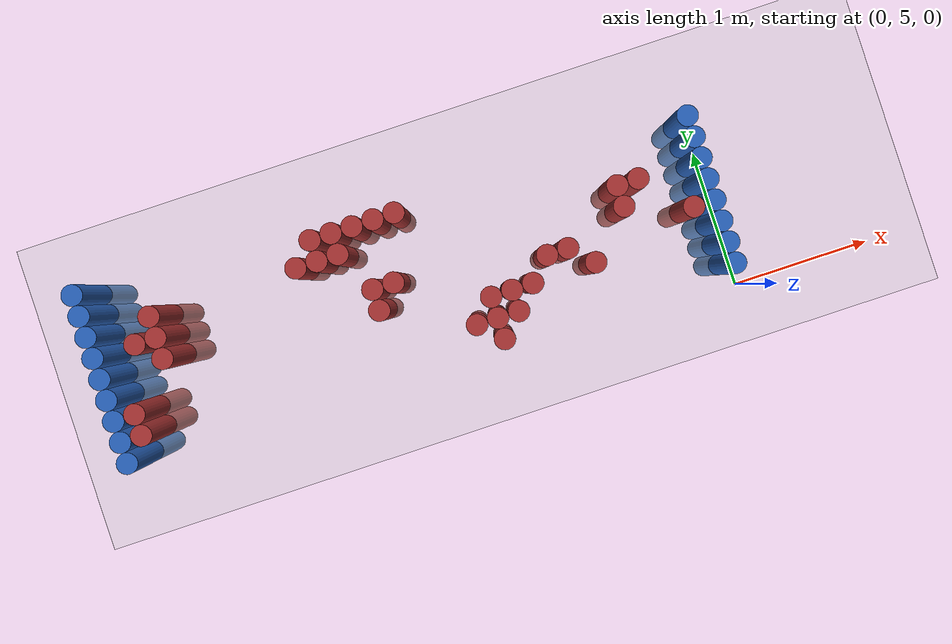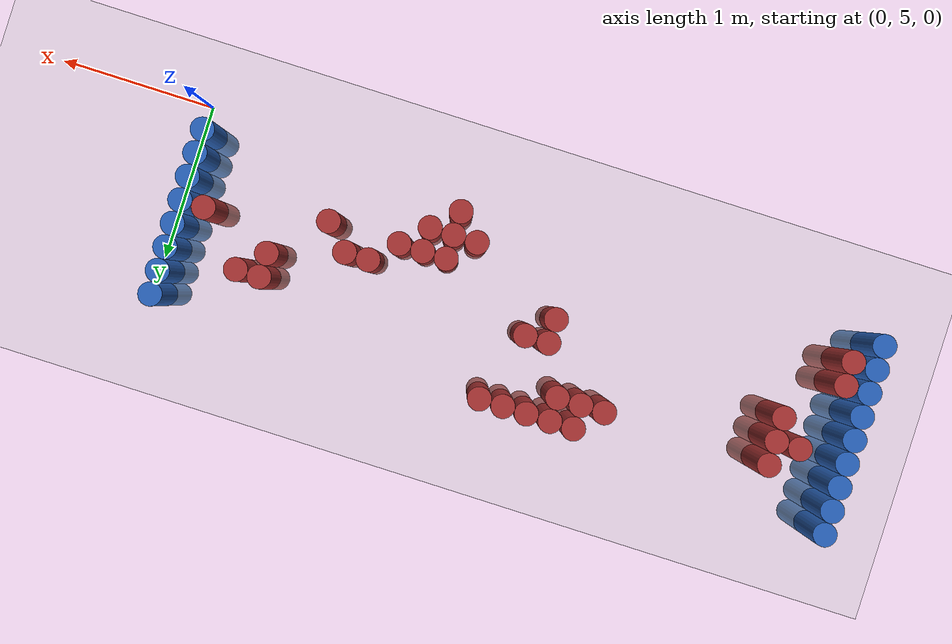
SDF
<sdf version="1.6">
 <world name="default">
  <model name="ground_plane">
   <static>1</static>
   <link name="link">
    <collision name="collision">
     <geometry><plane><normal>0 0 1</normal><size>100 100</size></plane></geometry>
     <surface><friction><ode><mu>100</mu><mu2>50</mu2></ode></friction></surface>
    </collision>
    <visual name="visual">
     <cast_shadows>0</cast_shadows>
     <geometry><plane><normal>0 0 1</normal><size>100 100</size></plane></geometry>
     <material>
      <script><uri>file://media/materials/scripts/gazebo.material</uri><name>Gazebo/Grey</name></script>
     </material>
    </visual>
   </link>
  </model>
  <model name="unit_cylinder_96">
   <static>1</static>
   <pose>-4.425000 5.175000 0.000000 0.000000 0.000000 0.000000</pose>
   <link name="link">
    <inertial>
     <mass>1</mass>
     <inertia><ixx>0.145833</ixx><ixy>0</ixy><ixz>0</ixz><iyy>0.145833</iyy><iyz>0</iyz><izz>0.125</izz></inertia>
    </inertial>
    <collision name="collision">
     <geometry><cylinder><radius>0.075000</radius><length>1</length></cylinder></geometry>
    </collision>
    <visual name="visual">
     <geometry><cylinder><radius>0.075000</radius><length>1</length></cylinder></geometry>
     <material>
      <ambient>0.152000 0.379000 0.720000 1</ambient>
      <diffuse>0.152000 0.379000 0.720000 1</diffuse>
     </material>
     <material>
      <script><name>Gazebo/Grey</name><uri>file://media/materials/scripts/gazebo.material</uri></script>
     </material>
    </visual>
   </link>
  </model>
  <model name="unit_cylinder_97">
   <static>1</static>
   <pose>-4.425000 5.325000 0.000000 0.000000 0.000000 0.000000</pose>
   <link name="link">
    <inertial>
     <mass>1</mass>
     <inertia><ixx>0.145833</ixx><ixy>0</ixy><ixz>0</ixz><iyy>0.145833</iyy><iyz>0</iyz><izz>0.125</izz></inertia>
    </inertial>
    <collision name="collision">
     <geometry><cylinder><radius>0.075000</radius><length>1</length></cylinder></geometry>
    </collision>
    <visual name="visual">
     <geometry><cylinder><radius>0.075000</radius><length>1</length></cylinder></geometry>
     <material>
      <ambient>0.152000 0.379000 0.720000 1</ambient>
      <diffuse>0.152000 0.379000 0.720000 1</diffuse>
     </material>
     <material>
      <script><name>Gazebo/Grey</name><uri>file://media/materials/scripts/gazebo.material</uri></script>
     </material>
    </visual>
   </link>
  </model>
  <model name="unit_cylinder_98">
   <static>1</static>
   <pose>-4.425000 5.475000 0.000000 0.000000 0.000000 0.000000</pose>
   <link name="link">
    <inertial>
     <mass>1</mass>
     <inertia><ixx>0.145833</ixx><ixy>0</ixy><ixz>0</ixz><iyy>0.145833</iyy><iyz>0</iyz><izz>0.125</izz></inertia>
    </inertial>
    <collision name="collision">
     <geometry><cylinder><radius>0.075000</radius><length>1</length></cylinder></geometry>
    </collision>
    <visual name="visual">
     <geometry><cylinder><radius>0.075000</radius><length>1</length></cylinder></geometry>
     <material>
      <ambient>0.152000 0.379000 0.720000 1</ambient>
      <diffuse>0.152000 0.379000 0.720000 1</diffuse>
     </material>
     <material>
      <script><name>Gazebo/Grey</name><uri>file://media/materials/scripts/gazebo.material</uri></script>
     </material>
    </visual>
   </link>
  </model>
  <model name="unit_cylinder_99">
   <static>1</static>
   <pose>-4.425000 5.625000 0.000000 0.000000 0.000000 0.000000</pose>
   <link name="link">
    <inertial>
     <mass>1</mass>
     <inertia><ixx>0.145833</ixx><ixy>0</ixy><ixz>0</ixz><iyy>0.145833</iyy><iyz>0</iyz><izz>0.125</izz></inertia>
    </inertial>
    <collision name="collision">
     <geometry><cylinder><radius>0.075000</radius><length>1</length></cylinder></geometry>
    </collision>
    <visual name="visual">
     <geometry><cylinder><radius>0.075000</radius><length>1</length></cylinder></geometry>
     <material>
      <ambient>0.152000 0.379000 0.720000 1</ambient>
      <diffuse>0.152000 0.379000 0.720000 1</diffuse>
     </material>
     <material>
      <script><name>Gazebo/Grey</name><uri>file://media/materials/scripts/gazebo.material</uri></script>
     </material>
    </visual>
   </link>
  </model>
  <model name="unit_cylinder_100">
   <static>1</static>
   <pose>-4.425000 5.775000 0.000000 0.000000 0.000000 0.000000</pose>
   <link name="link">
    <inertial>
     <mass>1</mass>
     <inertia><ixx>0.145833</ixx><ixy>0</ixy><ixz>0</ixz><iyy>0.145833</iyy><iyz>0</iyz><izz>0.125</izz></inertia>
    </inertial>
    <collision name="collision">
     <geometry><cylinder><radius>0.075000</radius><length>1</length></cylinder></geometry>
    </collision>
    <visual name="visual">
     <geometry><cylinder><radius>0.075000</radius><length>1</length></cylinder></geometry>
     <material>
      <ambient>0.152000 0.379000 0.720000 1</ambient>
      <diffuse>0.152000 0.379000 0.720000 1</diffuse>
     </material>
     <material>
      <script><name>Gazebo/Grey</name><uri>file://media/materials/scripts/gazebo.material</uri></script>
     </material>
    </visual>
   </link>
  </model>
  <model name="unit_cylinder_101">
   <static>1</static>
   <pose>-4.425000 5.925000 0.000000 0.000000 0.000000 0.000000</pose>
   <link name="link">
    <inertial>
     <mass>1</mass>
     <inertia><ixx>0.145833</ixx><ixy>0</ixy><ixz>0</ixz><iyy>0.145833</iyy><iyz>0</iyz><izz>0.125</izz></inertia>
    </inertial>
    <collision name="collision">
     <geometry><cylinder><radius>0.075000</radius><length>1</length></cylinder></geometry>
    </collision>
    <visual name="visual">
     <geometry><cylinder><radius>0.075000</radius><length>1</length></cylinder></geometry>
     <material>
      <ambient>0.152000 0.379000 0.720000 1</ambient>
      <diffuse>0.152000 0.379000 0.720000 1</diffuse>
     </material>
     <material>
      <script><name>Gazebo/Grey</name><uri>file://media/materials/scripts/gazebo.material</uri></script>
     </material>
    </visual>
   </link>
  </model>
  <model name="unit_cylinder_102">
   <static>1</static>
   <pose>-4.425000 6.075000 0.000000 0.000000 0.000000 0.000000</pose>
   <link name="link">
    <inertial>
     <mass>1</mass>
     <inertia><ixx>0.145833</ixx><ixy>0</ixy><ixz>0</ixz><iyy>0.145833</iyy><iyz>0</iyz><izz>0.125</izz></inertia>
    </inertial>
    <collision name="collision">
     <geometry><cylinder><radius>0.075000</radius><length>1</length></cylinder></geometry>
    </collision>
    <visual name="visual">
     <geometry><cylinder><radius>0.075000</radius><length>1</length></cylinder></geometry>
     <material>
      <ambient>0.152000 0.379000 0.720000 1</ambient>
      <diffuse>0.152000 0.379000 0.720000 1</diffuse>
     </material>
     <material>
      <script><name>Gazebo/Grey</name><uri>file://media/materials/scripts/gazebo.material</uri></script>
     </material>
    </visual>
   </link>
  </model>
  <model name="unit_cylinder_103">
   <static>1</static>
   <pose>-4.425000 6.225000 0.000000 0.000000 0.000000 0.000000</pose>
   <link name="link">
    <inertial>
     <mass>1</mass>
     <inertia><ixx>0.145833</ixx><ixy>0</ixy><ixz>0</ixz><iyy>0.145833</iyy><iyz>0</iyz><izz>0.125</izz></inertia>
    </inertial>
    <collision name="collision">
     <geometry><cylinder><radius>0.075000</radius><length>1</length></cylinder></geometry>
    </collision>
    <visual name="visual">
     <geometry><cylinder><radius>0.075000</radius><length>1</length></cylinder></geometry>
     <material>
      <ambient>0.152000 0.379000 0.720000 1</ambient>
      <diffuse>0.152000 0.379000 0.720000 1</diffuse>
     </material>
     <material>
      <script><name>Gazebo/Grey</name><uri>file://media/materials/scripts/gazebo.material</uri></script>
     </material>
    </visual>
   </link>
  </model>
  <model name="unit_cylinder_104">
   <static>1</static>
   <pose>-4.425000 6.375000 0.000000 0.000000 0.000000 0.000000</pose>
   <link name="link">
    <inertial>
     <mass>1</mass>
     <inertia><ixx>0.145833</ixx><ixy>0</ixy><ixz>0</ixz><iyy>0.145833</iyy><iyz>0</iyz><izz>0.125</izz></inertia>
    </inertial>
    <collision name="collision">
     <geometry><cylinder><radius>0.075000</radius><length>1</length></cylinder></geometry>
    </collision>
    <visual name="visual">
     <geometry><cylinder><radius>0.075000</radius><length>1</length></cylinder></geometry>
     <material>
      <ambient>0.152000 0.379000 0.720000 1</ambient>
      <diffuse>0.152000 0.379000 0.720000 1</diffuse>
     </material>
     <material>
      <script><name>Gazebo/Grey</name><uri>file://media/materials/scripts/gazebo.material</uri></script>
     </material>
    </visual>
   </link>
  </model>
  <model name="unit_cylinder_126">
   <static>1</static>
   <pose>-4.275000 5.325000 0.000000 0.000000 0.000000 0.000000</pose>
   <link name="link">
    <inertial>
     <mass>1</mass>
     <inertia><ixx>0.145833</ixx><ixy>0</ixy><ixz>0</ixz><iyy>0.145833</iyy><iyz>0</iyz><izz>0.125</izz></inertia>
    </inertial>
    <collision name="collision">
     <geometry><cylinder><radius>0.075000</radius><length>1</length></cylinder></geometry>
    </collision>
    <visual name="visual">
     <geometry><cylinder><radius>0.075000</radius><length>1</length></cylinder></geometry>
     <material>
      <ambient>0.648000 0.192000 0.192000 1</ambient>
      <diffuse>0.648000 0.192000 0.192000 1</diffuse>
     </material>
     <material>
      <script><name>Gazebo/Grey</name><uri>file://media/materials/scripts/gazebo.material</uri></script>
     </material>
    </visual>
   </link>
  </model>
  <model name="unit_cylinder_127">
   <static>1</static>
   <pose>-4.275000 5.475000 0.000000 0.000000 0.000000 0.000000</pose>
   <link name="link">
    <inertial>
     <mass>1</mass>
     <inertia><ixx>0.145833</ixx><ixy>0</ixy><ixz>0</ixz><iyy>0.145833</iyy><iyz>0</iyz><izz>0.125</izz></inertia>
    </inertial>
    <collision name="collision">
     <geometry><cylinder><radius>0.075000</radius><length>1</length></cylinder></geometry>
    </collision>
    <visual name="visual">
     <geometry><cylinder><radius>0.075000</radius><length>1</length></cylinder></geometry>
     <material>
      <ambient>0.648000 0.192000 0.192000 1</ambient>
      <diffuse>0.648000 0.192000 0.192000 1</diffuse>
     </material>
     <material>
      <script><name>Gazebo/Grey</name><uri>file://media/materials/scripts/gazebo.material</uri></script>
     </material>
    </visual>
   </link>
  </model>
  <model name="unit_cylinder_143">
   <static>1</static>
   <pose>-4.125000 5.925000 0.000000 0.000000 0.000000 0.000000</pose>
   <link name="link">
    <inertial>
     <mass>1</mass>
     <inertia><ixx>0.145833</ixx><ixy>0</ixy><ixz>0</ixz><iyy>0.145833</iyy><iyz>0</iyz><izz>0.125</izz></inertia>
    </inertial>
    <collision name="collision">
     <geometry><cylinder><radius>0.075000</radius><length>1</length></cylinder></geometry>
    </collision>
    <visual name="visual">
     <geometry><cylinder><radius>0.075000</radius><length>1</length></cylinder></geometry>
     <material>
      <ambient>0.648000 0.192000 0.192000 1</ambient>
      <diffuse>0.648000 0.192000 0.192000 1</diffuse>
     </material>
     <material>
      <script><name>Gazebo/Grey</name><uri>file://media/materials/scripts/gazebo.material</uri></script>
     </material>
    </visual>
   </link>
  </model>
  <model name="unit_cylinder_148">
   <static>1</static>
   <pose>-3.975000 5.775000 0.000000 0.000000 0.000000 0.000000</pose>
   <link name="link">
    <inertial>
     <mass>1</mass>
     <inertia><ixx>0.145833</ixx><ixy>0</ixy><ixz>0</ixz><iyy>0.145833</iyy><iyz>0</iyz><izz>0.125</izz></inertia>
    </inertial>
    <collision name="collision">
     <geometry><cylinder><radius>0.075000</radius><length>1</length></cylinder></geometry>
    </collision>
    <visual name="visual">
     <geometry><cylinder><radius>0.075000</radius><length>1</length></cylinder></geometry>
     <material>
      <ambient>0.648000 0.192000 0.192000 1</ambient>
      <diffuse>0.648000 0.192000 0.192000 1</diffuse>
     </material>
     <material>
      <script><name>Gazebo/Grey</name><uri>file://media/materials/scripts/gazebo.material</uri></script>
     </material>
    </visual>
   </link>
  </model>
  <model name="unit_cylinder_149">
   <static>1</static>
   <pose>-3.975000 5.925000 0.000000 0.000000 0.000000 0.000000</pose>
   <link name="link">
    <inertial>
     <mass>1</mass>
     <inertia><ixx>0.145833</ixx><ixy>0</ixy><ixz>0</ixz><iyy>0.145833</iyy><iyz>0</iyz><izz>0.125</izz></inertia>
    </inertial>
    <collision name="collision">
     <geometry><cylinder><radius>0.075000</radius><length>1</length></cylinder></geometry>
    </collision>
    <visual name="visual">
     <geometry><cylinder><radius>0.075000</radius><length>1</length></cylinder></geometry>
     <material>
      <ambient>0.648000 0.192000 0.192000 1</ambient>
      <diffuse>0.648000 0.192000 0.192000 1</diffuse>
     </material>
     <material>
      <script><name>Gazebo/Grey</name><uri>file://media/materials/scripts/gazebo.material</uri></script>
     </material>
    </visual>
   </link>
  </model>
  <model name="unit_cylinder_150">
   <static>1</static>
   <pose>-3.975000 6.075000 0.000000 0.000000 0.000000 0.000000</pose>
   <link name="link">
    <inertial>
     <mass>1</mass>
     <inertia><ixx>0.145833</ixx><ixy>0</ixy><ixz>0</ixz><iyy>0.145833</iyy><iyz>0</iyz><izz>0.125</izz></inertia>
    </inertial>
    <collision name="collision">
     <geometry><cylinder><radius>0.075000</radius><length>1</length></cylinder></geometry>
    </collision>
    <visual name="visual">
     <geometry><cylinder><radius>0.075000</radius><length>1</length></cylinder></geometry>
     <material>
      <ambient>0.648000 0.192000 0.192000 1</ambient>
      <diffuse>0.648000 0.192000 0.192000 1</diffuse>
     </material>
     <material>
      <script><name>Gazebo/Grey</name><uri>file://media/materials/scripts/gazebo.material</uri></script>
     </material>
    </visual>
   </link>
  </model>
  <model name="unit_cylinder_158">
   <static>1</static>
   <pose>-2.925000 6.075000 0.000000 0.000000 0.000000 0.000000</pose>
   <link name="link">
    <inertial>
     <mass>1</mass>
     <inertia><ixx>0.145833</ixx><ixy>0</ixy><ixz>0</ixz><iyy>0.145833</iyy><iyz>0</iyz><izz>0.125</izz></inertia>
    </inertial>
    <collision name="collision">
     <geometry><cylinder><radius>0.075000</radius><length>1</length></cylinder></geometry>
    </collision>
    <visual name="visual">
     <geometry><cylinder><radius>0.075000</radius><length>1</length></cylinder></geometry>
     <material>
      <ambient>0.648000 0.192000 0.192000 1</ambient>
      <diffuse>0.648000 0.192000 0.192000 1</diffuse>
     </material>
     <material>
      <script><name>Gazebo/Grey</name><uri>file://media/materials/scripts/gazebo.material</uri></script>
     </material>
    </visual>
   </link>
  </model>
  <model name="unit_cylinder_159">
   <static>1</static>
   <pose>-2.775000 6.075000 0.000000 0.000000 0.000000 0.000000</pose>
   <link name="link">
    <inertial>
     <mass>1</mass>
     <inertia><ixx>0.145833</ixx><ixy>0</ixy><ixz>0</ixz><iyy>0.145833</iyy><iyz>0</iyz><izz>0.125</izz></inertia>
    </inertial>
    <collision name="collision">
     <geometry><cylinder><radius>0.075000</radius><length>1</length></cylinder></geometry>
    </collision>
    <visual name="visual">
     <geometry><cylinder><radius>0.075000</radius><length>1</length></cylinder></geometry>
     <material>
      <ambient>0.648000 0.192000 0.192000 1</ambient>
      <diffuse>0.648000 0.192000 0.192000 1</diffuse>
     </material>
     <material>
      <script><name>Gazebo/Grey</name><uri>file://media/materials/scripts/gazebo.material</uri></script>
     </material>
    </visual>
   </link>
  </model>
  <model name="unit_cylinder_160">
   <static>1</static>
   <pose>-2.775000 6.225000 0.000000 0.000000 0.000000 0.000000</pose>
   <link name="link">
    <inertial>
     <mass>1</mass>
     <inertia><ixx>0.145833</ixx><ixy>0</ixy><ixz>0</ixz><iyy>0.145833</iyy><iyz>0</iyz><izz>0.125</izz></inertia>
    </inertial>
    <collision name="collision">
     <geometry><cylinder><radius>0.075000</radius><length>1</length></cylinder></geometry>
    </collision>
    <visual name="visual">
     <geometry><cylinder><radius>0.075000</radius><length>1</length></cylinder></geometry>
     <material>
      <ambient>0.648000 0.192000 0.192000 1</ambient>
      <diffuse>0.648000 0.192000 0.192000 1</diffuse>
     </material>
     <material>
      <script><name>Gazebo/Grey</name><uri>file://media/materials/scripts/gazebo.material</uri></script>
     </material>
    </visual>
   </link>
  </model>
  <model name="unit_cylinder_161">
   <static>1</static>
   <pose>-2.625000 6.075000 0.000000 0.000000 0.000000 0.000000</pose>
   <link name="link">
    <inertial>
     <mass>1</mass>
     <inertia><ixx>0.145833</ixx><ixy>0</ixy><ixz>0</ixz><iyy>0.145833</iyy><iyz>0</iyz><izz>0.125</izz></inertia>
    </inertial>
    <collision name="collision">
     <geometry><cylinder><radius>0.075000</radius><length>1</length></cylinder></geometry>
    </collision>
    <visual name="visual">
     <geometry><cylinder><radius>0.075000</radius><length>1</length></cylinder></geometry>
     <material>
      <ambient>0.648000 0.192000 0.192000 1</ambient>
      <diffuse>0.648000 0.192000 0.192000 1</diffuse>
     </material>
     <material>
      <script><name>Gazebo/Grey</name><uri>file://media/materials/scripts/gazebo.material</uri></script>
     </material>
    </visual>
   </link>
  </model>
  <model name="unit_cylinder_162">
   <static>1</static>
   <pose>-2.625000 6.225000 0.000000 0.000000 0.000000 0.000000</pose>
   <link name="link">
    <inertial>
     <mass>1</mass>
     <inertia><ixx>0.145833</ixx><ixy>0</ixy><ixz>0</ixz><iyy>0.145833</iyy><iyz>0</iyz><izz>0.125</izz></inertia>
    </inertial>
    <collision name="collision">
     <geometry><cylinder><radius>0.075000</radius><length>1</length></cylinder></geometry>
    </collision>
    <visual name="visual">
     <geometry><cylinder><radius>0.075000</radius><length>1</length></cylinder></geometry>
     <material>
      <ambient>0.648000 0.192000 0.192000 1</ambient>
      <diffuse>0.648000 0.192000 0.192000 1</diffuse>
     </material>
     <material>
      <script><name>Gazebo/Grey</name><uri>file://media/materials/scripts/gazebo.material</uri></script>
     </material>
    </visual>
   </link>
  </model>
  <model name="unit_cylinder_163">
   <static>1</static>
   <pose>-2.475000 5.625000 0.000000 0.000000 0.000000 0.000000</pose>
   <link name="link">
    <inertial>
     <mass>1</mass>
     <inertia><ixx>0.145833</ixx><ixy>0</ixy><ixz>0</ixz><iyy>0.145833</iyy><iyz>0</iyz><izz>0.125</izz></inertia>
    </inertial>
    <collision name="collision">
     <geometry><cylinder><radius>0.075000</radius><length>1</length></cylinder></geometry>
    </collision>
    <visual name="visual">
     <geometry><cylinder><radius>0.075000</radius><length>1</length></cylinder></geometry>
     <material>
      <ambient>0.648000 0.192000 0.192000 1</ambient>
      <diffuse>0.648000 0.192000 0.192000 1</diffuse>
     </material>
     <material>
      <script><name>Gazebo/Grey</name><uri>file://media/materials/scripts/gazebo.material</uri></script>
     </material>
    </visual>
   </link>
  </model>
  <model name="unit_cylinder_164">
   <static>1</static>
   <pose>-2.475000 5.775000 0.000000 0.000000 0.000000 0.000000</pose>
   <link name="link">
    <inertial>
     <mass>1</mass>
     <inertia><ixx>0.145833</ixx><ixy>0</ixy><ixz>0</ixz><iyy>0.145833</iyy><iyz>0</iyz><izz>0.125</izz></inertia>
    </inertial>
    <collision name="collision">
     <geometry><cylinder><radius>0.075000</radius><length>1</length></cylinder></geometry>
    </collision>
    <visual name="visual">
     <geometry><cylinder><radius>0.075000</radius><length>1</length></cylinder></geometry>
     <material>
      <ambient>0.648000 0.192000 0.192000 1</ambient>
      <diffuse>0.648000 0.192000 0.192000 1</diffuse>
     </material>
     <material>
      <script><name>Gazebo/Grey</name><uri>file://media/materials/scripts/gazebo.material</uri></script>
     </material>
    </visual>
   </link>
  </model>
  <model name="unit_cylinder_165">
   <static>1</static>
   <pose>-2.475000 6.225000 0.000000 0.000000 0.000000 0.000000</pose>
   <link name="link">
    <inertial>
     <mass>1</mass>
     <inertia><ixx>0.145833</ixx><ixy>0</ixy><ixz>0</ixz><iyy>0.145833</iyy><iyz>0</iyz><izz>0.125</izz></inertia>
    </inertial>
    <collision name="collision">
     <geometry><cylinder><radius>0.075000</radius><length>1</length></cylinder></geometry>
    </collision>
    <visual name="visual">
     <geometry><cylinder><radius>0.075000</radius><length>1</length></cylinder></geometry>
     <material>
      <ambient>0.648000 0.192000 0.192000 1</ambient>
      <diffuse>0.648000 0.192000 0.192000 1</diffuse>
     </material>
     <material>
      <script><name>Gazebo/Grey</name><uri>file://media/materials/scripts/gazebo.material</uri></script>
     </material>
    </visual>
   </link>
  </model>
  <model name="unit_cylinder_167">
   <static>1</static>
   <pose>-2.325000 5.775000 0.000000 0.000000 0.000000 0.000000</pose>
   <link name="link">
    <inertial>
     <mass>1</mass>
     <inertia><ixx>0.145833</ixx><ixy>0</ixy><ixz>0</ixz><iyy>0.145833</iyy><iyz>0</iyz><izz>0.125</izz></inertia>
    </inertial>
    <collision name="collision">
     <geometry><cylinder><radius>0.075000</radius><length>1</length></cylinder></geometry>
    </collision>
    <visual name="visual">
     <geometry><cylinder><radius>0.075000</radius><length>1</length></cylinder></geometry>
     <material>
      <ambient>0.648000 0.192000 0.192000 1</ambient>
      <diffuse>0.648000 0.192000 0.192000 1</diffuse>
     </material>
     <material>
      <script><name>Gazebo/Grey</name><uri>file://media/materials/scripts/gazebo.material</uri></script>
     </material>
    </visual>
   </link>
  </model>
  <model name="unit_cylinder_168">
   <static>1</static>
   <pose>-2.325000 6.225000 0.000000 0.000000 0.000000 0.000000</pose>
   <link name="link">
    <inertial>
     <mass>1</mass>
     <inertia><ixx>0.145833</ixx><ixy>0</ixy><ixz>0</ixz><iyy>0.145833</iyy><iyz>0</iyz><izz>0.125</izz></inertia>
    </inertial>
    <collision name="collision">
     <geometry><cylinder><radius>0.075000</radius><length>1</length></cylinder></geometry>
    </collision>
    <visual name="visual">
     <geometry><cylinder><radius>0.075000</radius><length>1</length></cylinder></geometry>
     <material>
      <ambient>0.648000 0.192000 0.192000 1</ambient>
      <diffuse>0.648000 0.192000 0.192000 1</diffuse>
     </material>
     <material>
      <script><name>Gazebo/Grey</name><uri>file://media/materials/scripts/gazebo.material</uri></script>
     </material>
    </visual>
   </link>
  </model>
  <model name="unit_cylinder_173">
   <static>1</static>
   <pose>-2.175000 6.225000 0.000000 0.000000 0.000000 0.000000</pose>
   <link name="link">
    <inertial>
     <mass>1</mass>
     <inertia><ixx>0.145833</ixx><ixy>0</ixy><ixz>0</ixz><iyy>0.145833</iyy><iyz>0</iyz><izz>0.125</izz></inertia>
    </inertial>
    <collision name="collision">
     <geometry><cylinder><radius>0.075000</radius><length>1</length></cylinder></geometry>
    </collision>
    <visual name="visual">
     <geometry><cylinder><radius>0.075000</radius><length>1</length></cylinder></geometry>
     <material>
      <ambient>0.648000 0.192000 0.192000 1</ambient>
      <diffuse>0.648000 0.192000 0.192000 1</diffuse>
     </material>
     <material>
      <script><name>Gazebo/Grey</name><uri>file://media/materials/scripts/gazebo.material</uri></script>
     </material>
    </visual>
   </link>
  </model>
  <model name="unit_cylinder_183">
   <static>1</static>
   <pose>-1.875000 5.325000 0.000000 0.000000 0.000000 0.000000</pose>
   <link name="link">
    <inertial>
     <mass>1</mass>
     <inertia><ixx>0.145833</ixx><ixy>0</ixy><ixz>0</ixz><iyy>0.145833</iyy><iyz>0</iyz><izz>0.125</izz></inertia>
    </inertial>
    <collision name="collision">
     <geometry><cylinder><radius>0.075000</radius><length>1</length></cylinder></geometry>
    </collision>
    <visual name="visual">
     <geometry><cylinder><radius>0.075000</radius><length>1</length></cylinder></geometry>
     <material>
      <ambient>0.648000 0.192000 0.192000 1</ambient>
      <diffuse>0.648000 0.192000 0.192000 1</diffuse>
     </material>
     <material>
      <script><name>Gazebo/Grey</name><uri>file://media/materials/scripts/gazebo.material</uri></script>
     </material>
    </visual>
   </link>
  </model>
  <model name="unit_cylinder_185">
   <static>1</static>
   <pose>-1.725000 5.175000 0.000000 0.000000 0.000000 0.000000</pose>
   <link name="link">
    <inertial>
     <mass>1</mass>
     <inertia><ixx>0.145833</ixx><ixy>0</ixy><ixz>0</ixz><iyy>0.145833</iyy><iyz>0</iyz><izz>0.125</izz></inertia>
    </inertial>
    <collision name="collision">
     <geometry><cylinder><radius>0.075000</radius><length>1</length></cylinder></geometry>
    </collision>
    <visual name="visual">
     <geometry><cylinder><radius>0.075000</radius><length>1</length></cylinder></geometry>
     <material>
      <ambient>0.648000 0.192000 0.192000 1</ambient>
      <diffuse>0.648000 0.192000 0.192000 1</diffuse>
     </material>
     <material>
      <script><name>Gazebo/Grey</name><uri>file://media/materials/scripts/gazebo.material</uri></script>
     </material>
    </visual>
   </link>
  </model>
  <model name="unit_cylinder_186">
   <static>1</static>
   <pose>-1.725000 5.325000 0.000000 0.000000 0.000000 0.000000</pose>
   <link name="link">
    <inertial>
     <mass>1</mass>
     <inertia><ixx>0.145833</ixx><ixy>0</ixy><ixz>0</ixz><iyy>0.145833</iyy><iyz>0</iyz><izz>0.125</izz></inertia>
    </inertial>
    <collision name="collision">
     <geometry><cylinder><radius>0.075000</radius><length>1</length></cylinder></geometry>
    </collision>
    <visual name="visual">
     <geometry><cylinder><radius>0.075000</radius><length>1</length></cylinder></geometry>
     <material>
      <ambient>0.648000 0.192000 0.192000 1</ambient>
      <diffuse>0.648000 0.192000 0.192000 1</diffuse>
     </material>
     <material>
      <script><name>Gazebo/Grey</name><uri>file://media/materials/scripts/gazebo.material</uri></script>
     </material>
    </visual>
   </link>
  </model>
  <model name="unit_cylinder_187">
   <static>1</static>
   <pose>-1.725000 5.475000 0.000000 0.000000 0.000000 0.000000</pose>
   <link name="link">
    <inertial>
     <mass>1</mass>
     <inertia><ixx>0.145833</ixx><ixy>0</ixy><ixz>0</ixz><iyy>0.145833</iyy><iyz>0</iyz><izz>0.125</izz></inertia>
    </inertial>
    <collision name="collision">
     <geometry><cylinder><radius>0.075000</radius><length>1</length></cylinder></geometry>
    </collision>
    <visual name="visual">
     <geometry><cylinder><radius>0.075000</radius><length>1</length></cylinder></geometry>
     <material>
      <ambient>0.648000 0.192000 0.192000 1</ambient>
      <diffuse>0.648000 0.192000 0.192000 1</diffuse>
     </material>
     <material>
      <script><name>Gazebo/Grey</name><uri>file://media/materials/scripts/gazebo.material</uri></script>
     </material>
    </visual>
   </link>
  </model>
  <model name="unit_cylinder_191">
   <static>1</static>
   <pose>-1.575000 5.325000 0.000000 0.000000 0.000000 0.000000</pose>
   <link name="link">
    <inertial>
     <mass>1</mass>
     <inertia><ixx>0.145833</ixx><ixy>0</ixy><ixz>0</ixz><iyy>0.145833</iyy><iyz>0</iyz><izz>0.125</izz></inertia>
    </inertial>
    <collision name="collision">
     <geometry><cylinder><radius>0.075000</radius><length>1</length></cylinder></geometry>
    </collision>
    <visual name="visual">
     <geometry><cylinder><radius>0.075000</radius><length>1</length></cylinder></geometry>
     <material>
      <ambient>0.648000 0.192000 0.192000 1</ambient>
      <diffuse>0.648000 0.192000 0.192000 1</diffuse>
     </material>
     <material>
      <script><name>Gazebo/Grey</name><uri>file://media/materials/scripts/gazebo.material</uri></script>
     </material>
    </visual>
   </link>
  </model>
  <model name="unit_cylinder_192">
   <static>1</static>
   <pose>-1.575000 5.475000 0.000000 0.000000 0.000000 0.000000</pose>
   <link name="link">
    <inertial>
     <mass>1</mass>
     <inertia><ixx>0.145833</ixx><ixy>0</ixy><ixz>0</ixz><iyy>0.145833</iyy><iyz>0</iyz><izz>0.125</izz></inertia>
    </inertial>
    <collision name="collision">
     <geometry><cylinder><radius>0.075000</radius><length>1</length></cylinder></geometry>
    </collision>
    <visual name="visual">
     <geometry><cylinder><radius>0.075000</radius><length>1</length></cylinder></geometry>
     <material>
      <ambient>0.648000 0.192000 0.192000 1</ambient>
      <diffuse>0.648000 0.192000 0.192000 1</diffuse>
     </material>
     <material>
      <script><name>Gazebo/Grey</name><uri>file://media/materials/scripts/gazebo.material</uri></script>
     </material>
    </visual>
   </link>
  </model>
  <model name="unit_cylinder_199">
   <static>1</static>
   <pose>-1.425000 5.475000 0.000000 0.000000 0.000000 0.000000</pose>
   <link name="link">
    <inertial>
     <mass>1</mass>
     <inertia><ixx>0.145833</ixx><ixy>0</ixy><ixz>0</ixz><iyy>0.145833</iyy><iyz>0</iyz><izz>0.125</izz></inertia>
    </inertial>
    <collision name="collision">
     <geometry><cylinder><radius>0.075000</radius><length>1</length></cylinder></geometry>
    </collision>
    <visual name="visual">
     <geometry><cylinder><radius>0.075000</radius><length>1</length></cylinder></geometry>
     <material>
      <ambient>0.648000 0.192000 0.192000 1</ambient>
      <diffuse>0.648000 0.192000 0.192000 1</diffuse>
     </material>
     <material>
      <script><name>Gazebo/Grey</name><uri>file://media/materials/scripts/gazebo.material</uri></script>
     </material>
    </visual>
   </link>
  </model>
  <model name="unit_cylinder_212">
   <static>1</static>
   <pose>-1.275000 5.625000 0.000000 0.000000 0.000000 0.000000</pose>
   <link name="link">
    <inertial>
     <mass>1</mass>
     <inertia><ixx>0.145833</ixx><ixy>0</ixy><ixz>0</ixz><iyy>0.145833</iyy><iyz>0</iyz><izz>0.125</izz></inertia>
    </inertial>
    <collision name="collision">
     <geometry><cylinder><radius>0.075000</radius><length>1</length></cylinder></geometry>
    </collision>
    <visual name="visual">
     <geometry><cylinder><radius>0.075000</radius><length>1</length></cylinder></geometry>
     <material>
      <ambient>0.648000 0.192000 0.192000 1</ambient>
      <diffuse>0.648000 0.192000 0.192000 1</diffuse>
     </material>
     <material>
      <script><name>Gazebo/Grey</name><uri>file://media/materials/scripts/gazebo.material</uri></script>
     </material>
    </visual>
   </link>
  </model>
  <model name="unit_cylinder_219">
   <static>1</static>
   <pose>-1.125000 5.625000 0.000000 0.000000 0.000000 0.000000</pose>
   <link name="link">
    <inertial>
     <mass>1</mass>
     <inertia><ixx>0.145833</ixx><ixy>0</ixy><ixz>0</ixz><iyy>0.145833</iyy><iyz>0</iyz><izz>0.125</izz></inertia>
    </inertial>
    <collision name="collision">
     <geometry><cylinder><radius>0.075000</radius><length>1</length></cylinder></geometry>
    </collision>
    <visual name="visual">
     <geometry><cylinder><radius>0.075000</radius><length>1</length></cylinder></geometry>
     <material>
      <ambient>0.648000 0.192000 0.192000 1</ambient>
      <diffuse>0.648000 0.192000 0.192000 1</diffuse>
     </material>
     <material>
      <script><name>Gazebo/Grey</name><uri>file://media/materials/scripts/gazebo.material</uri></script>
     </material>
    </visual>
   </link>
  </model>
  <model name="unit_cylinder_228">
   <static>1</static>
   <pose>-0.975000 5.475000 0.000000 0.000000 0.000000 0.000000</pose>
   <link name="link">
    <inertial>
     <mass>1</mass>
     <inertia><ixx>0.145833</ixx><ixy>0</ixy><ixz>0</ixz><iyy>0.145833</iyy><iyz>0</iyz><izz>0.125</izz></inertia>
    </inertial>
    <collision name="collision">
     <geometry><cylinder><radius>0.075000</radius><length>1</length></cylinder></geometry>
    </collision>
    <visual name="visual">
     <geometry><cylinder><radius>0.075000</radius><length>1</length></cylinder></geometry>
     <material>
      <ambient>0.648000 0.192000 0.192000 1</ambient>
      <diffuse>0.648000 0.192000 0.192000 1</diffuse>
     </material>
     <material>
      <script><name>Gazebo/Grey</name><uri>file://media/materials/scripts/gazebo.material</uri></script>
     </material>
    </visual>
   </link>
  </model>
  <model name="unit_cylinder_244">
   <static>1</static>
   <pose>-0.675000 5.775000 0.000000 0.000000 0.000000 0.000000</pose>
   <link name="link">
    <inertial>
     <mass>1</mass>
     <inertia><ixx>0.145833</ixx><ixy>0</ixy><ixz>0</ixz><iyy>0.145833</iyy><iyz>0</iyz><izz>0.125</izz></inertia>
    </inertial>
    <collision name="collision">
     <geometry><cylinder><radius>0.075000</radius><length>1</length></cylinder></geometry>
    </collision>
    <visual name="visual">
     <geometry><cylinder><radius>0.075000</radius><length>1</length></cylinder></geometry>
     <material>
      <ambient>0.648000 0.192000 0.192000 1</ambient>
      <diffuse>0.648000 0.192000 0.192000 1</diffuse>
     </material>
     <material>
      <script><name>Gazebo/Grey</name><uri>file://media/materials/scripts/gazebo.material</uri></script>
     </material>
    </visual>
   </link>
  </model>
  <model name="unit_cylinder_245">
   <static>1</static>
   <pose>-0.675000 5.925000 0.000000 0.000000 0.000000 0.000000</pose>
   <link name="link">
    <inertial>
     <mass>1</mass>
     <inertia><ixx>0.145833</ixx><ixy>0</ixy><ixz>0</ixz><iyy>0.145833</iyy><iyz>0</iyz><izz>0.125</izz></inertia>
    </inertial>
    <collision name="collision">
     <geometry><cylinder><radius>0.075000</radius><length>1</length></cylinder></geometry>
    </collision>
    <visual name="visual">
     <geometry><cylinder><radius>0.075000</radius><length>1</length></cylinder></geometry>
     <material>
      <ambient>0.648000 0.192000 0.192000 1</ambient>
      <diffuse>0.648000 0.192000 0.192000 1</diffuse>
     </material>
     <material>
      <script><name>Gazebo/Grey</name><uri>file://media/materials/scripts/gazebo.material</uri></script>
     </material>
    </visual>
   </link>
  </model>
  <model name="unit_cylinder_250">
   <static>1</static>
   <pose>-0.525000 5.925000 0.000000 0.000000 0.000000 0.000000</pose>
   <link name="link">
    <inertial>
     <mass>1</mass>
     <inertia><ixx>0.145833</ixx><ixy>0</ixy><ixz>0</ixz><iyy>0.145833</iyy><iyz>0</iyz><izz>0.125</izz></inertia>
    </inertial>
    <collision name="collision">
     <geometry><cylinder><radius>0.075000</radius><length>1</length></cylinder></geometry>
    </collision>
    <visual name="visual">
     <geometry><cylinder><radius>0.075000</radius><length>1</length></cylinder></geometry>
     <material>
      <ambient>0.648000 0.192000 0.192000 1</ambient>
      <diffuse>0.648000 0.192000 0.192000 1</diffuse>
     </material>
     <material>
      <script><name>Gazebo/Grey</name><uri>file://media/materials/scripts/gazebo.material</uri></script>
     </material>
    </visual>
   </link>
  </model>
  <model name="unit_cylinder_254">
   <static>1</static>
   <pose>-0.225000 5.625000 0.000000 0.000000 0.000000 0.000000</pose>
   <link name="link">
    <inertial>
     <mass>1</mass>
     <inertia><ixx>0.145833</ixx><ixy>0</ixy><ixz>0</ixz><iyy>0.145833</iyy><iyz>0</iyz><izz>0.125</izz></inertia>
    </inertial>
    <collision name="collision">
     <geometry><cylinder><radius>0.075000</radius><length>1</length></cylinder></geometry>
    </collision>
    <visual name="visual">
     <geometry><cylinder><radius>0.075000</radius><length>1</length></cylinder></geometry>
     <material>
      <ambient>0.648000 0.192000 0.192000 1</ambient>
      <diffuse>0.648000 0.192000 0.192000 1</diffuse>
     </material>
     <material>
      <script><name>Gazebo/Grey</name><uri>file://media/materials/scripts/gazebo.material</uri></script>
     </material>
    </visual>
   </link>
  </model>
  <model name="unit_cylinder_259">
   <static>1</static>
   <pose>-0.075000 5.175000 0.000000 0.000000 0.000000 0.000000</pose>
   <link name="link">
    <inertial>
     <mass>1</mass>
     <inertia><ixx>0.145833</ixx><ixy>0</ixy><ixz>0</ixz><iyy>0.145833</iyy><iyz>0</iyz><izz>0.125</izz></inertia>
    </inertial>
    <collision name="collision">
     <geometry><cylinder><radius>0.075000</radius><length>1</length></cylinder></geometry>
    </collision>
    <visual name="visual">
     <geometry><cylinder><radius>0.075000</radius><length>1</length></cylinder></geometry>
     <material>
      <ambient>0.152000 0.379000 0.720000 1</ambient>
      <diffuse>0.152000 0.379000 0.720000 1</diffuse>
     </material>
     <material>
      <script><name>Gazebo/Grey</name><uri>file://media/materials/scripts/gazebo.material</uri></script>
     </material>
    </visual>
   </link>
  </model>
  <model name="unit_cylinder_260">
   <static>1</static>
   <pose>-0.075000 5.325000 0.000000 0.000000 0.000000 0.000000</pose>
   <link name="link">
    <inertial>
     <mass>1</mass>
     <inertia><ixx>0.145833</ixx><ixy>0</ixy><ixz>0</ixz><iyy>0.145833</iyy><iyz>0</iyz><izz>0.125</izz></inertia>
    </inertial>
    <collision name="collision">
     <geometry><cylinder><radius>0.075000</radius><length>1</length></cylinder></geometry>
    </collision>
    <visual name="visual">
     <geometry><cylinder><radius>0.075000</radius><length>1</length></cylinder></geometry>
     <material>
      <ambient>0.152000 0.379000 0.720000 1</ambient>
      <diffuse>0.152000 0.379000 0.720000 1</diffuse>
     </material>
     <material>
      <script><name>Gazebo/Grey</name><uri>file://media/materials/scripts/gazebo.material</uri></script>
     </material>
    </visual>
   </link>
  </model>
  <model name="unit_cylinder_261">
   <static>1</static>
   <pose>-0.075000 5.475000 0.000000 0.000000 0.000000 0.000000</pose>
   <link name="link">
    <inertial>
     <mass>1</mass>
     <inertia><ixx>0.145833</ixx><ixy>0</ixy><ixz>0</ixz><iyy>0.145833</iyy><iyz>0</iyz><izz>0.125</izz></inertia>
    </inertial>
    <collision name="collision">
     <geometry><cylinder><radius>0.075000</radius><length>1</length></cylinder></geometry>
    </collision>
    <visual name="visual">
     <geometry><cylinder><radius>0.075000</radius><length>1</length></cylinder></geometry>
     <material>
      <ambient>0.152000 0.379000 0.720000 1</ambient>
      <diffuse>0.152000 0.379000 0.720000 1</diffuse>
     </material>
     <material>
      <script><name>Gazebo/Grey</name><uri>file://media/materials/scripts/gazebo.material</uri></script>
     </material>
    </visual>
   </link>
  </model>
  <model name="unit_cylinder_262">
   <static>1</static>
   <pose>-0.075000 5.625000 0.000000 0.000000 0.000000 0.000000</pose>
   <link name="link">
    <inertial>
     <mass>1</mass>
     <inertia><ixx>0.145833</ixx><ixy>0</ixy><ixz>0</ixz><iyy>0.145833</iyy><iyz>0</iyz><izz>0.125</izz></inertia>
    </inertial>
    <collision name="collision">
     <geometry><cylinder><radius>0.075000</radius><length>1</length></cylinder></geometry>
    </collision>
    <visual name="visual">
     <geometry><cylinder><radius>0.075000</radius><length>1</length></cylinder></geometry>
     <material>
      <ambient>0.152000 0.379000 0.720000 1</ambient>
      <diffuse>0.152000 0.379000 0.720000 1</diffuse>
     </material>
     <material>
      <script><name>Gazebo/Grey</name><uri>file://media/materials/scripts/gazebo.material</uri></script>
     </material>
    </visual>
   </link>
  </model>
  <model name="unit_cylinder_263">
   <static>1</static>
   <pose>-0.075000 5.775000 0.000000 0.000000 0.000000 0.000000</pose>
   <link name="link">
    <inertial>
     <mass>1</mass>
     <inertia><ixx>0.145833</ixx><ixy>0</ixy><ixz>0</ixz><iyy>0.145833</iyy><iyz>0</iyz><izz>0.125</izz></inertia>
    </inertial>
    <collision name="collision">
     <geometry><cylinder><radius>0.075000</radius><length>1</length></cylinder></geometry>
    </collision>
    <visual name="visual">
     <geometry><cylinder><radius>0.075000</radius><length>1</length></cylinder></geometry>
     <material>
      <ambient>0.152000 0.379000 0.720000 1</ambient>
      <diffuse>0.152000 0.379000 0.720000 1</diffuse>
     </material>
     <material>
      <script><name>Gazebo/Grey</name><uri>file://media/materials/scripts/gazebo.material</uri></script>
     </material>
    </visual>
   </link>
  </model>
  <model name="unit_cylinder_264">
   <static>1</static>
   <pose>-0.075000 5.925000 0.000000 0.000000 0.000000 0.000000</pose>
   <link name="link">
    <inertial>
     <mass>1</mass>
     <inertia><ixx>0.145833</ixx><ixy>0</ixy><ixz>0</ixz><iyy>0.145833</iyy><iyz>0</iyz><izz>0.125</izz></inertia>
    </inertial>
    <collision name="collision">
     <geometry><cylinder><radius>0.075000</radius><length>1</length></cylinder></geometry>
    </collision>
    <visual name="visual">
     <geometry><cylinder><radius>0.075000</radius><length>1</length></cylinder></geometry>
     <material>
      <ambient>0.152000 0.379000 0.720000 1</ambient>
      <diffuse>0.152000 0.379000 0.720000 1</diffuse>
     </material>
     <material>
      <script><name>Gazebo/Grey</name><uri>file://media/materials/scripts/gazebo.material</uri></script>
     </material>
    </visual>
   </link>
  </model>
  <model name="unit_cylinder_265">
   <static>1</static>
   <pose>-0.075000 6.075000 0.000000 0.000000 0.000000 0.000000</pose>
   <link name="link">
    <inertial>
     <mass>1</mass>
     <inertia><ixx>0.145833</ixx><ixy>0</ixy><ixz>0</ixz><iyy>0.145833</iyy><iyz>0</iyz><izz>0.125</izz></inertia>
    </inertial>
    <collision name="collision">
     <geometry><cylinder><radius>0.075000</radius><length>1</length></cylinder></geometry>
    </collision>
    <visual name="visual">
     <geometry><cylinder><radius>0.075000</radius><length>1</length></cylinder></geometry>
     <material>
      <ambient>0.152000 0.379000 0.720000 1</ambient>
      <diffuse>0.152000 0.379000 0.720000 1</diffuse>
     </material>
     <material>
      <script><name>Gazebo/Grey</name><uri>file://media/materials/scripts/gazebo.material</uri></script>
     </material>
    </visual>
   </link>
  </model>
  <model name="unit_cylinder_266">
   <static>1</static>
   <pose>-0.075000 6.225000 0.000000 0.000000 0.000000 0.000000</pose>
   <link name="link">
    <inertial>
     <mass>1</mass>
     <inertia><ixx>0.145833</ixx><ixy>0</ixy><ixz>0</ixz><iyy>0.145833</iyy><iyz>0</iyz><izz>0.125</izz></inertia>
    </inertial>
    <collision name="collision">
     <geometry><cylinder><radius>0.075000</radius><length>1</length></cylinder></geometry>
    </collision>
    <visual name="visual">
     <geometry><cylinder><radius>0.075000</radius><length>1</length></cylinder></geometry>
     <material>
      <ambient>0.152000 0.379000 0.720000 1</ambient>
      <diffuse>0.152000 0.379000 0.720000 1</diffuse>
     </material>
     <material>
      <script><name>Gazebo/Grey</name><uri>file://media/materials/scripts/gazebo.material</uri></script>
     </material>
    </visual>
   </link>
  </model>
 </world>
</sdf>
